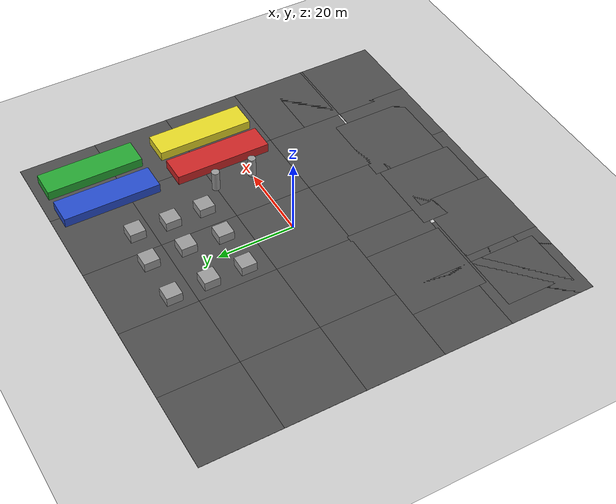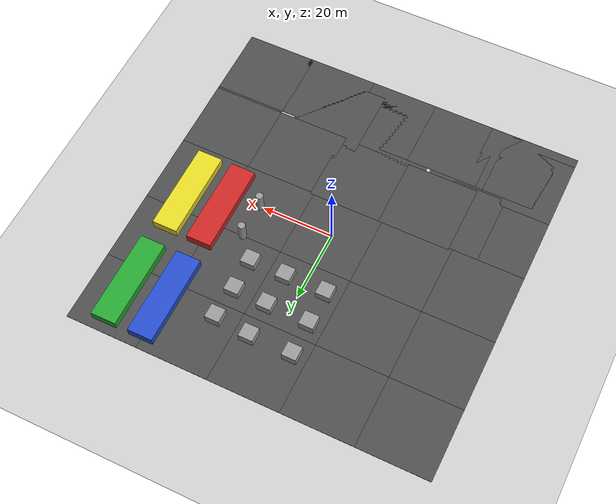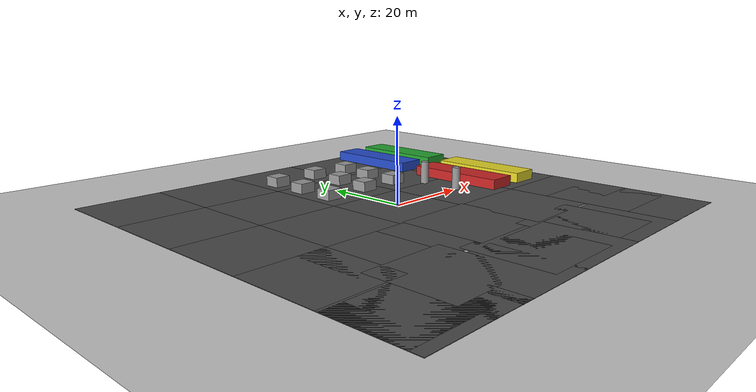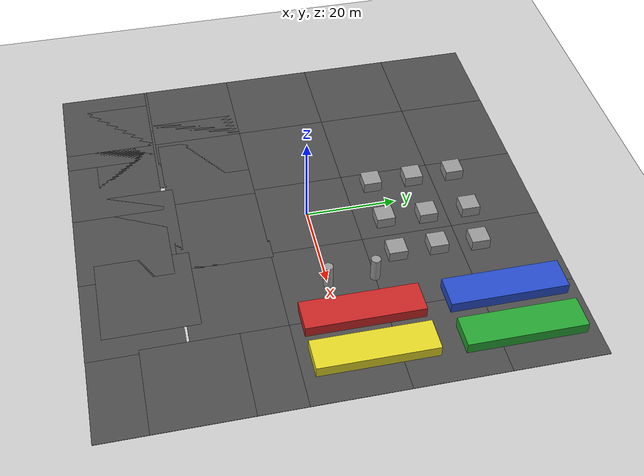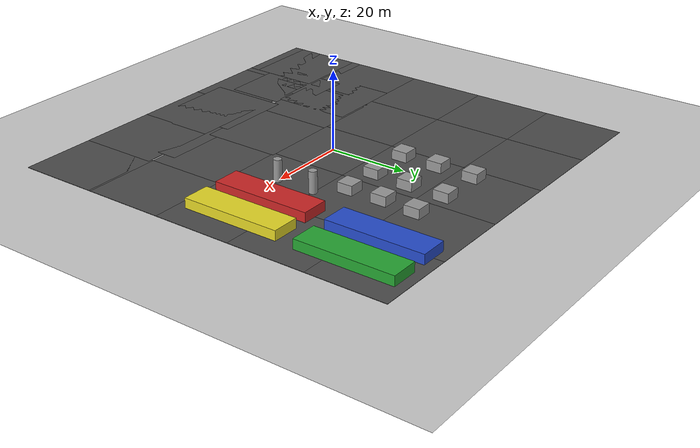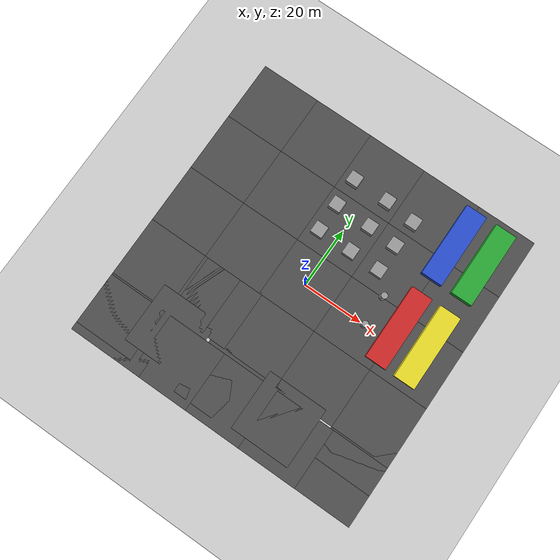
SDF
<gazebo version="1.2">
 <world name="default">
  <scene>
   <ambient>0.500000 0.500000 0.500000 1.000000</ambient>
   <background>0.500000 0.500000 0.500000 1.000000</background>
   <shadows>0</shadows>
  </scene>
  <physics type="ode">
   <gravity>0.000000 0.000000 -9.800000</gravity>
   <ode>
    <solver><type>quick</type><dt>0.001000</dt><iters>10</iters><sor>1.300000</sor></solver>
    <constraints>
     <cfm>0.000000</cfm>
     <erp>0.200000</erp>
     <contact_max_correcting_vel>100.000000</contact_max_correcting_vel>
     <contact_surface_layer>0.001000</contact_surface_layer>
    </constraints>
   </ode>
   <update_rate>1000.000000</update_rate>
  </physics>
  <model name="plane1_model">
   <link name="body">
    <collision name="geom_1">
     <geometry><plane><normal>0.000000 0.000000 1.000000</normal><size>1.000000 1.000000</size></plane></geometry>
     <surface>
      <friction>
       <ode>
        <mu>10.000000</mu>
        <mu2>10.000000</mu2>
        <fdir1>0.000000 0.000000 0.000000</fdir1>
        <slip1>0.000000</slip1>
        <slip2>0.000000</slip2>
       </ode>
      </friction>
      <bounce>
       <restitution_coefficient>0.000000</restitution_coefficient>
       <threshold>1000000.000000</threshold>
      </bounce>
      <contact>
       <ode>
        <soft_cfm>0.000000</soft_cfm>
        <soft_erp>0.200000</soft_erp>
        <kp>10000000000.000000</kp>
        <kd>1.000000</kd>
        <max_vel>100.000000</max_vel>
        <min_depth>0.000100</min_depth>
       </ode>
      </contact>
     </surface>
    </collision>
    <visual name="visual_1">
     <geometry>
      <plane><normal>0.000000 0.000000 1.000000</normal><size>100.000000 100.000000</size></plane>
     </geometry>
     <material><script><uri>__default__</uri><name>__default__</name></script></material>
     <cast_shadows>0</cast_shadows>
    </visual>
    <velocity_decay><linear>0.000000</linear><angular>0.000000</angular></velocity_decay>
   </link>
   <static>1</static>
  </model>
  <light name="my_light" type="directional">
   <pose>0.000000 0.000000 30.000000 0.000000 0.000000 0.000000</pose>
   <diffuse>0.900000 0.900000 0.900000 1.000000</diffuse>
   <specular>0.100000 0.100000 0.100000 1.000000</specular>
   <attenuation><range>20.000000</range></attenuation>
   <direction>0.000000 0.000000 -1.000000</direction>
   <cast_shadows>0</cast_shadows>
  </light>
  <plugin name="joint_trajectory_plugin" filename="libgazebo_ros_joint_trajectory.so"/>
  <model name="unit_box_4">
   <pose>40.000000 5.000000 0.500000 0.000000 0.000000 0.000000</pose>
   <link name="link">
    <inertial>
     <mass>1.000000</mass>
     <inertia>
      <ixx>1.000000</ixx>
      <ixy>0.000000</ixy>
      <ixz>0.000000</ixz>
      <iyy>1.000000</iyy>
      <iyz>0.000000</iyz>
      <izz>1.000000</izz>
     </inertia>
    </inertial>
    <collision name="collision">
     <geometry><box><size>7.000000 25.000000 4.000000</size></box></geometry>
    </collision>
    <visual name="visual">
     <geometry><box><size>7.000000 25.000000 4.000000</size></box></geometry>
     <material>
      <script><uri>file://media/materials/scripts/gazebo.material</uri><name>Gazebo/Yellow</name></script>
     </material>
    </visual>
    <velocity_decay><linear>0.000000</linear><angular>0.000000</angular></velocity_decay>
   </link>
   <static>1</static>
  </model>
  <model name="unit_box_5">
   <pose>40.514400 35.000000 0.500000 0.000000 0.000000 0.000000</pose>
   <link name="link">
    <inertial>
     <mass>1.000000</mass>
     <inertia>
      <ixx>1.000000</ixx>
      <ixy>0.000000</ixy>
      <ixz>0.000000</ixz>
      <iyy>1.000000</iyy>
      <iyz>0.000000</iyz>
      <izz>1.000000</izz>
     </inertia>
    </inertial>
    <collision name="collision">
     <geometry><box><size>7.000000 25.000000 4.000000</size></box></geometry>
    </collision>
    <visual name="visual">
     <geometry><box><size>7.000000 25.000000 4.000000</size></box></geometry>
     <material>
      <script><uri>file://media/materials/scripts/gazebo.material</uri><name>Gazebo/Green</name></script>
     </material>
    </visual>
    <velocity_decay><linear>0.000000</linear><angular>0.000000</angular></velocity_decay>
   </link>
   <static>1</static>
  </model>
  <model name="unit_box_6">
   <pose>30.000000 35.000000 0.500000 0.000000 0.000000 0.000000</pose>
   <link name="link">
    <inertial>
     <mass>1.000000</mass>
     <inertia>
      <ixx>1.000000</ixx>
      <ixy>0.000000</ixy>
      <ixz>0.000000</ixz>
      <iyy>1.000000</iyy>
      <iyz>0.000000</iyz>
      <izz>1.000000</izz>
     </inertia>
    </inertial>
    <collision name="collision">
     <geometry><box><size>7.000000 25.000000 4.000000</size></box></geometry>
    </collision>
    <visual name="visual">
     <geometry><box><size>7.000000 25.000000 4.000000</size></box></geometry>
     <material>
      <script><uri>file://media/materials/scripts/gazebo.material</uri><name>Gazebo/Blue</name></script>
     </material>
    </visual>
    <velocity_decay><linear>0.000000</linear><angular>0.000000</angular></velocity_decay>
   </link>
   <static>1</static>
  </model>
  <model name="unit_box_25">
   <pose>30.000000 5.000000 0.500000 0.000000 0.000000 0.000000</pose>
   <link name="link">
    <inertial>
     <mass>1.000000</mass>
     <inertia>
      <ixx>1.000000</ixx>
      <ixy>0.000000</ixy>
      <ixz>0.000000</ixz>
      <iyy>1.000000</iyy>
      <iyz>0.000000</iyz>
      <izz>1.000000</izz>
     </inertia>
    </inertial>
    <collision name="collision">
     <geometry><box><size>7.000000 25.000000 4.000000</size></box></geometry>
    </collision>
    <visual name="visual">
     <geometry><box><size>7.000000 25.000000 4.000000</size></box></geometry>
     <material>
      <script><uri>file://media/materials/scripts/gazebo.material</uri><name>Gazebo/Red</name></script>
     </material>
    </visual>
    <velocity_decay><linear>0.000000</linear><angular>0.000000</angular></velocity_decay>
   </link>
   <static>1</static>
  </model>
  <model name="asphalt_plane">
   <static>1</static>
   <link name="link">
    <collision name="collision">
     <geometry><box><size>20.000000 20.000000 0.100000</size></box></geometry>
    </collision>
    <visual name="visual">
     <cast_shadows>0</cast_shadows>
     <geometry><box><size>20.000000 20.000000 0.100000</size></box></geometry>
     <material>
      <script>
       <uri>model://asphalt_plane/materials/scripts</uri>
       <uri>model://asphalt_plane/materials/textures</uri>
       <name>vrc/asphalt</name>
      </script>
     </material>
    </visual>
    <velocity_decay><linear>0.000000</linear><angular>0.000000</angular></velocity_decay>
   </link>
   <pose>40.000000 -40.520300 0.000000 0.000000 0.000000 0.000000</pose>
  </model>
  <model name="asphalt_plane_0">
   <static>1</static>
   <link name="link">
    <collision name="collision">
     <geometry><box><size>20.000000 20.000000 0.100000</size></box></geometry>
    </collision>
    <visual name="visual">
     <cast_shadows>0</cast_shadows>
     <geometry><box><size>20.000000 20.000000 0.100000</size></box></geometry>
     <material>
      <script>
       <uri>model://asphalt_plane/materials/scripts</uri>
       <uri>model://asphalt_plane/materials/textures</uri>
       <name>vrc/asphalt</name>
      </script>
     </material>
    </visual>
    <velocity_decay><linear>0.000000</linear><angular>0.000000</angular></velocity_decay>
   </link>
   <pose>40.000000 -20.000000 0.000000 0.000000 0.000000 0.000000</pose>
  </model>
  <model name="asphalt_plane_1">
   <static>1</static>
   <link name="link">
    <collision name="collision">
     <geometry><box><size>20.000000 20.000000 0.100000</size></box></geometry>
    </collision>
    <visual name="visual">
     <cast_shadows>0</cast_shadows>
     <geometry><box><size>20.000000 20.000000 0.100000</size></box></geometry>
     <material>
      <script>
       <uri>model://asphalt_plane/materials/scripts</uri>
       <uri>model://asphalt_plane/materials/textures</uri>
       <name>vrc/asphalt</name>
      </script>
     </material>
    </visual>
    <velocity_decay><linear>0.000000</linear><angular>0.000000</angular></velocity_decay>
   </link>
   <pose>40.000000 -30.000000 0.000000 0.000000 0.000000 0.000000</pose>
  </model>
  <model name="asphalt_plane_2">
   <static>1</static>
   <link name="link">
    <collision name="collision">
     <geometry><box><size>20.000000 20.000000 0.100000</size></box></geometry>
    </collision>
    <visual name="visual">
     <cast_shadows>0</cast_shadows>
     <geometry><box><size>20.000000 20.000000 0.100000</size></box></geometry>
     <material>
      <script>
       <uri>model://asphalt_plane/materials/scripts</uri>
       <uri>model://asphalt_plane/materials/textures</uri>
       <name>vrc/asphalt</name>
      </script>
     </material>
    </visual>
    <velocity_decay><linear>0.000000</linear><angular>0.000000</angular></velocity_decay>
   </link>
   <pose>40.000000 0.000000 0.000000 0.000000 0.000000 0.000000</pose>
  </model>
  <model name="asphalt_plane_3">
   <static>1</static>
   <link name="link">
    <collision name="collision">
     <geometry><box><size>20.000000 20.000000 0.100000</size></box></geometry>
    </collision>
    <visual name="visual">
     <cast_shadows>0</cast_shadows>
     <geometry><box><size>20.000000 20.000000 0.100000</size></box></geometry>
     <material>
      <script>
       <uri>model://asphalt_plane/materials/scripts</uri>
       <uri>model://asphalt_plane/materials/textures</uri>
       <name>vrc/asphalt</name>
      </script>
     </material>
    </visual>
    <velocity_decay><linear>0.000000</linear><angular>0.000000</angular></velocity_decay>
   </link>
   <pose>40.000000 20.000000 0.000000 0.000000 0.000000 0.000000</pose>
  </model>
  <model name="asphalt_plane_4">
   <static>1</static>
   <link name="link">
    <collision name="collision">
     <geometry><box><size>20.000000 20.000000 0.100000</size></box></geometry>
    </collision>
    <visual name="visual">
     <cast_shadows>0</cast_shadows>
     <geometry><box><size>20.000000 20.000000 0.100000</size></box></geometry>
     <material>
      <script>
       <uri>model://asphalt_plane/materials/scripts</uri>
       <uri>model://asphalt_plane/materials/textures</uri>
       <name>vrc/asphalt</name>
      </script>
     </material>
    </visual>
    <velocity_decay><linear>0.000000</linear><angular>0.000000</angular></velocity_decay>
   </link>
   <pose>40.000000 40.000000 0.000000 0.000000 0.000000 0.000000</pose>
  </model>
  <model name="asphalt_plane_5">
   <static>1</static>
   <link name="link">
    <collision name="collision">
     <geometry><box><size>20.000000 20.000000 0.100000</size></box></geometry>
    </collision>
    <visual name="visual">
     <cast_shadows>0</cast_shadows>
     <geometry><box><size>20.000000 20.000000 0.100000</size></box></geometry>
     <material>
      <script>
       <uri>model://asphalt_plane/materials/scripts</uri>
       <uri>model://asphalt_plane/materials/textures</uri>
       <name>vrc/asphalt</name>
      </script>
     </material>
    </visual>
    <velocity_decay><linear>0.000000</linear><angular>0.000000</angular></velocity_decay>
   </link>
   <pose>20.000000 40.000000 0.000000 0.000000 0.000000 0.000000</pose>
  </model>
  <model name="asphalt_plane_6">
   <static>1</static>
   <link name="link">
    <collision name="collision">
     <geometry><box><size>20.000000 20.000000 0.100000</size></box></geometry>
    </collision>
    <visual name="visual">
     <cast_shadows>0</cast_shadows>
     <geometry><box><size>20.000000 20.000000 0.100000</size></box></geometry>
     <material>
      <script>
       <uri>model://asphalt_plane/materials/scripts</uri>
       <uri>model://asphalt_plane/materials/textures</uri>
       <name>vrc/asphalt</name>
      </script>
     </material>
    </visual>
    <velocity_decay><linear>0.000000</linear><angular>0.000000</angular></velocity_decay>
   </link>
   <pose>20.000000 20.000000 0.000000 0.000000 0.000000 0.000000</pose>
  </model>
  <model name="asphalt_plane_7">
   <static>1</static>
   <link name="link">
    <collision name="collision">
     <geometry><box><size>20.000000 20.000000 0.100000</size></box></geometry>
    </collision>
    <visual name="visual">
     <cast_shadows>0</cast_shadows>
     <geometry><box><size>20.000000 20.000000 0.100000</size></box></geometry>
     <material>
      <script>
       <uri>model://asphalt_plane/materials/scripts</uri>
       <uri>model://asphalt_plane/materials/textures</uri>
       <name>vrc/asphalt</name>
      </script>
     </material>
    </visual>
    <velocity_decay><linear>0.000000</linear><angular>0.000000</angular></velocity_decay>
   </link>
   <pose>0.000000 40.000000 0.000000 0.000000 0.000000 0.000000</pose>
  </model>
  <model name="asphalt_plane_8">
   <static>1</static>
   <link name="link">
    <collision name="collision">
     <geometry><box><size>20.000000 20.000000 0.100000</size></box></geometry>
    </collision>
    <visual name="visual">
     <cast_shadows>0</cast_shadows>
     <geometry><box><size>20.000000 20.000000 0.100000</size></box></geometry>
     <material>
      <script>
       <uri>model://asphalt_plane/materials/scripts</uri>
       <uri>model://asphalt_plane/materials/textures</uri>
       <name>vrc/asphalt</name>
      </script>
     </material>
    </visual>
    <velocity_decay><linear>0.000000</linear><angular>0.000000</angular></velocity_decay>
   </link>
   <pose>-20.000000 40.000000 0.000000 0.000000 0.000000 0.000000</pose>
  </model>
  <model name="asphalt_plane_9">
   <static>1</static>
   <link name="link">
    <collision name="collision">
     <geometry><box><size>20.000000 20.000000 0.100000</size></box></geometry>
    </collision>
    <visual name="visual">
     <cast_shadows>0</cast_shadows>
     <geometry><box><size>20.000000 20.000000 0.100000</size></box></geometry>
     <material>
      <script>
       <uri>model://asphalt_plane/materials/scripts</uri>
       <uri>model://asphalt_plane/materials/textures</uri>
       <name>vrc/asphalt</name>
      </script>
     </material>
    </visual>
    <velocity_decay><linear>0.000000</linear><angular>0.000000</angular></velocity_decay>
   </link>
   <pose>-40.000000 40.000000 0.000000 0.000000 0.000000 0.000000</pose>
  </model>
  <model name="asphalt_plane_10">
   <static>1</static>
   <link name="link">
    <collision name="collision">
     <geometry><box><size>20.000000 20.000000 0.100000</size></box></geometry>
    </collision>
    <visual name="visual">
     <cast_shadows>0</cast_shadows>
     <geometry><box><size>20.000000 20.000000 0.100000</size></box></geometry>
     <material>
      <script>
       <uri>model://asphalt_plane/materials/scripts</uri>
       <uri>model://asphalt_plane/materials/textures</uri>
       <name>vrc/asphalt</name>
      </script>
     </material>
    </visual>
    <velocity_decay><linear>0.000000</linear><angular>0.000000</angular></velocity_decay>
   </link>
   <pose>0.000000 20.000000 0.000000 0.000000 0.000000 0.000000</pose>
  </model>
  <model name="asphalt_plane_11">
   <static>1</static>
   <link name="link">
    <collision name="collision">
     <geometry><box><size>20.000000 20.000000 0.100000</size></box></geometry>
    </collision>
    <visual name="visual">
     <cast_shadows>0</cast_shadows>
     <geometry><box><size>20.000000 20.000000 0.100000</size></box></geometry>
     <material>
      <script>
       <uri>model://asphalt_plane/materials/scripts</uri>
       <uri>model://asphalt_plane/materials/textures</uri>
       <name>vrc/asphalt</name>
      </script>
     </material>
    </visual>
    <velocity_decay><linear>0.000000</linear><angular>0.000000</angular></velocity_decay>
   </link>
   <pose>-20.000000 20.000000 0.000000 0.000000 0.000000 0.000000</pose>
  </model>
  <model name="asphalt_plane_12">
   <static>1</static>
   <link name="link">
    <collision name="collision">
     <geometry><box><size>20.000000 20.000000 0.100000</size></box></geometry>
    </collision>
    <visual name="visual">
     <cast_shadows>0</cast_shadows>
     <geometry><box><size>20.000000 20.000000 0.100000</size></box></geometry>
     <material>
      <script>
       <uri>model://asphalt_plane/materials/scripts</uri>
       <uri>model://asphalt_plane/materials/textures</uri>
       <name>vrc/asphalt</name>
      </script>
     </material>
    </visual>
    <velocity_decay><linear>0.000000</linear><angular>0.000000</angular></velocity_decay>
   </link>
   <pose>-40.000000 20.000000 0.000000 0.000000 0.000000 0.000000</pose>
  </model>
  <model name="asphalt_plane_13">
   <static>1</static>
   <link name="link">
    <collision name="collision">
     <geometry><box><size>20.000000 20.000000 0.100000</size></box></geometry>
    </collision>
    <visual name="visual">
     <cast_shadows>0</cast_shadows>
     <geometry><box><size>20.000000 20.000000 0.100000</size></box></geometry>
     <material>
      <script>
       <uri>model://asphalt_plane/materials/scripts</uri>
       <uri>model://asphalt_plane/materials/textures</uri>
       <name>vrc/asphalt</name>
      </script>
     </material>
    </visual>
    <velocity_decay><linear>0.000000</linear><angular>0.000000</angular></velocity_decay>
   </link>
   <pose>20.000000 0.000000 0.000000 0.000000 0.000000 0.000000</pose>
  </model>
  <model name="asphalt_plane_14">
   <static>1</static>
   <link name="link">
    <collision name="collision">
     <geometry><box><size>20.000000 20.000000 0.100000</size></box></geometry>
    </collision>
    <visual name="visual">
     <cast_shadows>0</cast_shadows>
     <geometry><box><size>20.000000 20.000000 0.100000</size></box></geometry>
     <material>
      <script>
       <uri>model://asphalt_plane/materials/scripts</uri>
       <uri>model://asphalt_plane/materials/textures</uri>
       <name>vrc/asphalt</name>
      </script>
     </material>
    </visual>
    <velocity_decay><linear>0.000000</linear><angular>0.000000</angular></velocity_decay>
   </link>
   <pose>-40.000000 0.000000 0.000000 0.000000 0.000000 0.000000</pose>
  </model>
  <model name="asphalt_plane_15">
   <static>1</static>
   <link name="link">
    <collision name="collision">
     <geometry><box><size>20.000000 20.000000 0.100000</size></box></geometry>
    </collision>
    <visual name="visual">
     <cast_shadows>0</cast_shadows>
     <geometry><box><size>20.000000 20.000000 0.100000</size></box></geometry>
     <material>
      <script>
       <uri>model://asphalt_plane/materials/scripts</uri>
       <uri>model://asphalt_plane/materials/textures</uri>
       <name>vrc/asphalt</name>
      </script>
     </material>
    </visual>
    <velocity_decay><linear>0.000000</linear><angular>0.000000</angular></velocity_decay>
   </link>
   <pose>-40.000000 -20.000000 0.000000 0.000000 0.000000 0.000000</pose>
  </model>
  <model name="asphalt_plane_16">
   <static>1</static>
   <link name="link">
    <collision name="collision">
     <geometry><box><size>20.000000 20.000000 0.100000</size></box></geometry>
    </collision>
    <visual name="visual">
     <cast_shadows>0</cast_shadows>
     <geometry><box><size>20.000000 20.000000 0.100000</size></box></geometry>
     <material>
      <script>
       <uri>model://asphalt_plane/materials/scripts</uri>
       <uri>model://asphalt_plane/materials/textures</uri>
       <name>vrc/asphalt</name>
      </script>
     </material>
    </visual>
    <velocity_decay><linear>0.000000</linear><angular>0.000000</angular></velocity_decay>
   </link>
  </model>
  <model name="asphalt_plane_17">
   <static>1</static>
   <link name="link">
    <collision name="collision">
     <geometry><box><size>20.000000 20.000000 0.100000</size></box></geometry>
    </collision>
    <visual name="visual">
     <cast_shadows>0</cast_shadows>
     <geometry><box><size>20.000000 20.000000 0.100000</size></box></geometry>
     <material>
      <script>
       <uri>model://asphalt_plane/materials/scripts</uri>
       <uri>model://asphalt_plane/materials/textures</uri>
       <name>vrc/asphalt</name>
      </script>
     </material>
    </visual>
    <velocity_decay><linear>0.000000</linear><angular>0.000000</angular></velocity_decay>
   </link>
   <pose>-20.000000 0.000000 0.000000 0.000000 0.000000 0.000000</pose>
  </model>
  <model name="asphalt_plane_18">
   <static>1</static>
   <link name="link">
    <collision name="collision">
     <geometry><box><size>20.000000 20.000000 0.100000</size></box></geometry>
    </collision>
    <visual name="visual">
     <cast_shadows>0</cast_shadows>
     <geometry><box><size>20.000000 20.000000 0.100000</size></box></geometry>
     <material>
      <script>
       <uri>model://asphalt_plane/materials/scripts</uri>
       <uri>model://asphalt_plane/materials/textures</uri>
       <name>vrc/asphalt</name>
      </script>
     </material>
    </visual>
    <velocity_decay><linear>0.000000</linear><angular>0.000000</angular></velocity_decay>
   </link>
   <pose>20.000000 -20.000000 0.000000 0.000000 0.000000 0.000000</pose>
  </model>
  <model name="asphalt_plane_19">
   <static>1</static>
   <link name="link">
    <collision name="collision">
     <geometry><box><size>20.000000 20.000000 0.100000</size></box></geometry>
    </collision>
    <visual name="visual">
     <cast_shadows>0</cast_shadows>
     <geometry><box><size>20.000000 20.000000 0.100000</size></box></geometry>
     <material>
      <script>
       <uri>model://asphalt_plane/materials/scripts</uri>
       <uri>model://asphalt_plane/materials/textures</uri>
       <name>vrc/asphalt</name>
      </script>
     </material>
    </visual>
    <velocity_decay><linear>0.000000</linear><angular>0.000000</angular></velocity_decay>
   </link>
   <pose>1.000000 -19.557600 0.000000 0.000000 0.000000 0.000000</pose>
  </model>
  <model name="asphalt_plane_20">
   <static>1</static>
   <link name="link">
    <collision name="collision">
     <geometry><box><size>20.000000 20.000000 0.100000</size></box></geometry>
    </collision>
    <visual name="visual">
     <cast_shadows>0</cast_shadows>
     <geometry><box><size>20.000000 20.000000 0.100000</size></box></geometry>
     <material>
      <script>
       <uri>model://asphalt_plane/materials/scripts</uri>
       <uri>model://asphalt_plane/materials/textures</uri>
       <name>vrc/asphalt</name>
      </script>
     </material>
    </visual>
    <velocity_decay><linear>0.000000</linear><angular>0.000000</angular></velocity_decay>
   </link>
   <pose>-19.000000 -19.512800 0.000000 0.000000 0.000000 0.000000</pose>
  </model>
  <model name="asphalt_plane_21">
   <static>1</static>
   <link name="link">
    <collision name="collision">
     <geometry><box><size>20.000000 20.000000 0.100000</size></box></geometry>
    </collision>
    <visual name="visual">
     <cast_shadows>0</cast_shadows>
     <geometry><box><size>20.000000 20.000000 0.100000</size></box></geometry>
     <material>
      <script>
       <uri>model://asphalt_plane/materials/scripts</uri>
       <uri>model://asphalt_plane/materials/textures</uri>
       <name>vrc/asphalt</name>
      </script>
     </material>
    </visual>
    <velocity_decay><linear>0.000000</linear><angular>0.000000</angular></velocity_decay>
   </link>
   <pose>-40.000000 -38.000000 0.000000 0.000000 0.000000 0.000000</pose>
  </model>
  <model name="asphalt_plane_22">
   <static>1</static>
   <link name="link">
    <collision name="collision">
     <geometry><box><size>20.000000 20.000000 0.100000</size></box></geometry>
    </collision>
    <visual name="visual">
     <cast_shadows>0</cast_shadows>
     <geometry><box><size>20.000000 20.000000 0.100000</size></box></geometry>
     <material>
      <script>
       <uri>model://asphalt_plane/materials/scripts</uri>
       <uri>model://asphalt_plane/materials/textures</uri>
       <name>vrc/asphalt</name>
      </script>
     </material>
    </visual>
    <velocity_decay><linear>0.000000</linear><angular>0.000000</angular></velocity_decay>
   </link>
   <pose>16.000000 -37.000000 0.000000 0.000000 0.000000 0.000000</pose>
  </model>
  <model name="asphalt_plane_23">
   <static>1</static>
   <link name="link">
    <collision name="collision">
     <geometry><box><size>20.000000 20.000000 0.100000</size></box></geometry>
    </collision>
    <visual name="visual">
     <cast_shadows>0</cast_shadows>
     <geometry><box><size>20.000000 20.000000 0.100000</size></box></geometry>
     <material>
      <script>
       <uri>model://asphalt_plane/materials/scripts</uri>
       <uri>model://asphalt_plane/materials/textures</uri>
       <name>vrc/asphalt</name>
      </script>
     </material>
    </visual>
    <velocity_decay><linear>0.000000</linear><angular>0.000000</angular></velocity_decay>
   </link>
   <pose>-4.000000 -38.000000 0.000000 0.000000 0.000000 0.000000</pose>
  </model>
  <model name="asphalt_plane_24">
   <static>1</static>
   <link name="link">
    <collision name="collision">
     <geometry><box><size>20.000000 20.000000 0.100000</size></box></geometry>
    </collision>
    <visual name="visual">
     <cast_shadows>0</cast_shadows>
     <geometry><box><size>20.000000 20.000000 0.100000</size></box></geometry>
     <material>
      <script>
       <uri>model://asphalt_plane/materials/scripts</uri>
       <uri>model://asphalt_plane/materials/textures</uri>
       <name>vrc/asphalt</name>
      </script>
     </material>
    </visual>
    <velocity_decay><linear>0.000000</linear><angular>0.000000</angular></velocity_decay>
   </link>
   <pose>-27.000000 -20.000000 0.000000 0.000000 0.000000 0.000000</pose>
  </model>
  <model name="asphalt_plane_25">
   <static>1</static>
   <link name="link">
    <collision name="collision">
     <geometry><box><size>20.000000 20.000000 0.100000</size></box></geometry>
    </collision>
    <visual name="visual">
     <cast_shadows>0</cast_shadows>
     <geometry><box><size>20.000000 20.000000 0.100000</size></box></geometry>
     <material>
      <script>
       <uri>model://asphalt_plane/materials/scripts</uri>
       <uri>model://asphalt_plane/materials/textures</uri>
       <name>vrc/asphalt</name>
      </script>
     </material>
    </visual>
    <velocity_decay><linear>0.000000</linear><angular>0.000000</angular></velocity_decay>
   </link>
   <pose>-25.000000 -34.000000 0.000000 0.000000 0.000000 0.000000</pose>
  </model>
  <model name="asphalt_plane_26">
   <static>1</static>
   <link name="link">
    <collision name="collision">
     <geometry><box><size>20.000000 20.000000 0.100000</size></box></geometry>
    </collision>
    <visual name="visual">
     <cast_shadows>0</cast_shadows>
     <geometry><box><size>20.000000 20.000000 0.100000</size></box></geometry>
     <material>
      <script>
       <uri>model://asphalt_plane/materials/scripts</uri>
       <uri>model://asphalt_plane/materials/textures</uri>
       <name>vrc/asphalt</name>
      </script>
     </material>
    </visual>
    <velocity_decay><linear>0.000000</linear><angular>0.000000</angular></velocity_decay>
   </link>
   <pose>21.000000 -40.559200 0.000000 0.000000 0.000000 0.000000</pose>
  </model>
  <model name="asphalt_plane_27">
   <static>1</static>
   <link name="link">
    <collision name="collision">
     <geometry><box><size>20.000000 20.000000 0.100000</size></box></geometry>
    </collision>
    <visual name="visual">
     <cast_shadows>0</cast_shadows>
     <geometry><box><size>20.000000 20.000000 0.100000</size></box></geometry>
     <material>
      <script>
       <uri>model://asphalt_plane/materials/scripts</uri>
       <uri>model://asphalt_plane/materials/textures</uri>
       <name>vrc/asphalt</name>
      </script>
     </material>
    </visual>
    <velocity_decay><linear>0.000000</linear><angular>0.000000</angular></velocity_decay>
   </link>
   <pose>1.401160 -40.573400 0.000000 0.000000 0.000000 0.000000</pose>
  </model>
  <model name="asphalt_plane_28">
   <static>1</static>
   <link name="link">
    <collision name="collision">
     <geometry><box><size>20.000000 20.000000 0.100000</size></box></geometry>
    </collision>
    <visual name="visual">
     <cast_shadows>0</cast_shadows>
     <geometry><box><size>20.000000 20.000000 0.100000</size></box></geometry>
     <material>
      <script>
       <uri>model://asphalt_plane/materials/scripts</uri>
       <uri>model://asphalt_plane/materials/textures</uri>
       <name>vrc/asphalt</name>
      </script>
     </material>
    </visual>
    <velocity_decay><linear>0.000000</linear><angular>0.000000</angular></velocity_decay>
   </link>
   <pose>-18.000000 -40.589400 0.000000 0.000000 0.000000 0.000000</pose>
  </model>
  <model name="asphalt_plane_29">
   <static>1</static>
   <link name="link">
    <collision name="collision">
     <geometry><box><size>20.000000 20.000000 0.100000</size></box></geometry>
    </collision>
    <visual name="visual">
     <cast_shadows>0</cast_shadows>
     <geometry><box><size>20.000000 20.000000 0.100000</size></box></geometry>
     <material>
      <script>
       <uri>model://asphalt_plane/materials/scripts</uri>
       <uri>model://asphalt_plane/materials/textures</uri>
       <name>vrc/asphalt</name>
      </script>
     </material>
    </visual>
    <velocity_decay><linear>0.000000</linear><angular>0.000000</angular></velocity_decay>
   </link>
   <pose>-35.000000 -40.568100 0.000000 0.000000 0.000000 0.000000</pose>
  </model>
  <model name="asphalt_plane_30">
   <static>1</static>
   <link name="link">
    <collision name="collision">
     <geometry><box><size>20.000000 20.000000 0.100000</size></box></geometry>
    </collision>
    <visual name="visual">
     <cast_shadows>0</cast_shadows>
     <geometry><box><size>20.000000 20.000000 0.100000</size></box></geometry>
     <material>
      <script>
       <uri>model://asphalt_plane/materials/scripts</uri>
       <uri>model://asphalt_plane/materials/textures</uri>
       <name>vrc/asphalt</name>
      </script>
     </material>
    </visual>
    <velocity_decay><linear>0.000000</linear><angular>0.000000</angular></velocity_decay>
   </link>
   <pose>-40.000000 -40.558800 0.000000 0.000000 0.000000 0.000000</pose>
  </model>
  <model name="unit_cylinder_1">
   <pose>21.000000 0.000000 0.500000 0.000000 0.000000 0.000000</pose>
   <link name="link">
    <inertial>
     <mass>1.000000</mass>
     <inertia>
      <ixx>1.000000</ixx>
      <ixy>0.000000</ixy>
      <ixz>0.000000</ixz>
      <iyy>1.000000</iyy>
      <iyz>0.000000</iyz>
      <izz>1.000000</izz>
     </inertia>
    </inertial>
    <collision name="collision">
     <geometry><cylinder><radius>1.000000</radius><length>10.000000</length></cylinder></geometry>
    </collision>
    <visual name="visual">
     <geometry><cylinder><radius>1.000000</radius><length>10.000000</length></cylinder></geometry>
     <material>
      <script><uri>file://media/materials/scripts/gazebo.material</uri><name>Gazebo/Grey</name></script>
     </material>
    </visual>
    <velocity_decay><linear>0.000000</linear><angular>0.000000</angular></velocity_decay>
   </link>
   <static>1</static>
  </model>
  <model name="unit_cylinder_2">
   <pose>21.000000 10.000000 0.500000 0.000000 0.000000 0.000000</pose>
   <link name="link">
    <inertial>
     <mass>1.000000</mass>
     <inertia>
      <ixx>1.000000</ixx>
      <ixy>0.000000</ixy>
      <ixz>0.000000</ixz>
      <iyy>1.000000</iyy>
      <iyz>0.000000</iyz>
      <izz>1.000000</izz>
     </inertia>
    </inertial>
    <collision name="collision">
     <geometry><cylinder><radius>1.000000</radius><length>10.000000</length></cylinder></geometry>
    </collision>
    <visual name="visual">
     <geometry><cylinder><radius>1.000000</radius><length>10.000000</length></cylinder></geometry>
     <material>
      <script><uri>file://media/materials/scripts/gazebo.material</uri><name>Gazebo/Grey</name></script>
     </material>
    </visual>
    <velocity_decay><linear>0.000000</linear><angular>0.000000</angular></velocity_decay>
   </link>
   <static>1</static>
  </model>
  <model name="unit_box_1">
   <pose>-6.000000 16.000000 0.500000 0.000000 0.000000 0.000000</pose>
   <link name="link">
    <inertial>
     <mass>1.000000</mass>
     <inertia>
      <ixx>1.000000</ixx>
      <ixy>0.000000</ixy>
      <ixz>0.000000</ixz>
      <iyy>1.000000</iyy>
      <iyz>0.000000</iyz>
      <izz>1.000000</izz>
     </inertia>
    </inertial>
    <collision name="collision">
     <geometry><box><size>4.000000 4.000000 4.000000</size></box></geometry>
    </collision>
    <visual name="visual">
     <geometry><box><size>4.000000 4.000000 4.000000</size></box></geometry>
     <material>
      <script><uri>file://media/materials/scripts/gazebo.material</uri><name>Gazebo/Grey</name></script>
     </material>
    </visual>
    <velocity_decay><linear>0.000000</linear><angular>0.000000</angular></velocity_decay>
   </link>
   <static>1</static>
  </model>
  <model name="unit_box_2">
   <pose>-6.000000 25.497300 0.500000 0.000000 0.000000 0.000000</pose>
   <link name="link">
    <inertial>
     <mass>1.000000</mass>
     <inertia>
      <ixx>1.000000</ixx>
      <ixy>0.000000</ixy>
      <ixz>0.000000</ixz>
      <iyy>1.000000</iyy>
      <iyz>0.000000</iyz>
      <izz>1.000000</izz>
     </inertia>
    </inertial>
    <collision name="collision">
     <geometry><box><size>4.000000 4.000000 4.000000</size></box></geometry>
    </collision>
    <visual name="visual">
     <geometry><box><size>4.000000 4.000000 4.000000</size></box></geometry>
     <material>
      <script><uri>file://media/materials/scripts/gazebo.material</uri><name>Gazebo/Grey</name></script>
     </material>
    </visual>
    <velocity_decay><linear>0.000000</linear><angular>0.000000</angular></velocity_decay>
   </link>
   <static>1</static>
  </model>
  <model name="unit_box_3">
   <pose>-6.000000 35.000000 0.500000 0.000000 0.000000 0.000000</pose>
   <link name="link">
    <inertial>
     <mass>1.000000</mass>
     <inertia>
      <ixx>1.000000</ixx>
      <ixy>0.000000</ixy>
      <ixz>0.000000</ixz>
      <iyy>1.000000</iyy>
      <iyz>0.000000</iyz>
      <izz>1.000000</izz>
     </inertia>
    </inertial>
    <collision name="collision">
     <geometry><box><size>4.000000 4.000000 4.000000</size></box></geometry>
    </collision>
    <visual name="visual">
     <geometry><box><size>4.000000 4.000000 4.000000</size></box></geometry>
     <material>
      <script><uri>file://media/materials/scripts/gazebo.material</uri><name>Gazebo/Grey</name></script>
     </material>
    </visual>
    <velocity_decay><linear>0.000000</linear><angular>0.000000</angular></velocity_decay>
   </link>
   <static>1</static>
  </model>
  <model name="unit_box_4_0">
   <pose>5.447900 16.000000 0.500000 0.000000 0.000000 0.000000</pose>
   <link name="link">
    <inertial>
     <mass>1.000000</mass>
     <inertia>
      <ixx>1.000000</ixx>
      <ixy>0.000000</ixy>
      <ixz>0.000000</ixz>
      <iyy>1.000000</iyy>
      <iyz>0.000000</iyz>
      <izz>1.000000</izz>
     </inertia>
    </inertial>
    <collision name="collision">
     <geometry><box><size>4.000000 4.000000 4.000000</size></box></geometry>
    </collision>
    <visual name="visual">
     <geometry><box><size>4.000000 4.000000 4.000000</size></box></geometry>
     <material>
      <script><uri>file://media/materials/scripts/gazebo.material</uri><name>Gazebo/Grey</name></script>
     </material>
    </visual>
    <velocity_decay><linear>0.000000</linear><angular>0.000000</angular></velocity_decay>
   </link>
   <static>1</static>
  </model>
  <model name="unit_box_5_0">
   <pose>6.000000 25.438600 0.500000 0.000000 0.000000 0.000000</pose>
   <link name="link">
    <inertial>
     <mass>1.000000</mass>
     <inertia>
      <ixx>1.000000</ixx>
      <ixy>0.000000</ixy>
      <ixz>0.000000</ixz>
      <iyy>1.000000</iyy>
      <iyz>0.000000</iyz>
      <izz>1.000000</izz>
     </inertia>
    </inertial>
    <collision name="collision">
     <geometry><box><size>4.000000 4.000000 4.000000</size></box></geometry>
    </collision>
    <visual name="visual">
     <geometry><box><size>4.000000 4.000000 4.000000</size></box></geometry>
     <material>
      <script><uri>file://media/materials/scripts/gazebo.material</uri><name>Gazebo/Grey</name></script>
     </material>
    </visual>
    <velocity_decay><linear>0.000000</linear><angular>0.000000</angular></velocity_decay>
   </link>
   <static>1</static>
  </model>
  <model name="unit_box_6_0">
   <pose>6.000000 35.000000 0.500000 0.000000 0.000000 0.000000</pose>
   <link name="link">
    <inertial>
     <mass>1.000000</mass>
     <inertia>
      <ixx>1.000000</ixx>
      <ixy>0.000000</ixy>
      <ixz>0.000000</ixz>
      <iyy>1.000000</iyy>
      <iyz>0.000000</iyz>
      <izz>1.000000</izz>
     </inertia>
    </inertial>
    <collision name="collision">
     <geometry><box><size>4.000000 4.000000 4.000000</size></box></geometry>
    </collision>
    <visual name="visual">
     <geometry><box><size>4.000000 4.000000 4.000000</size></box></geometry>
     <material>
      <script><uri>file://media/materials/scripts/gazebo.material</uri><name>Gazebo/Grey</name></script>
     </material>
    </visual>
    <velocity_decay><linear>0.000000</linear><angular>0.000000</angular></velocity_decay>
   </link>
   <static>1</static>
  </model>
  <model name="unit_box_7">
   <pose>15.510070 16.000000 0.500000 0.000000 0.000000 0.000000</pose>
   <link name="link">
    <inertial>
     <mass>1.000000</mass>
     <inertia>
      <ixx>1.000000</ixx>
      <ixy>0.000000</ixy>
      <ixz>0.000000</ixz>
      <iyy>1.000000</iyy>
      <iyz>0.000000</iyz>
      <izz>1.000000</izz>
     </inertia>
    </inertial>
    <collision name="collision">
     <geometry><box><size>4.000000 4.000000 4.000000</size></box></geometry>
    </collision>
    <visual name="visual">
     <geometry><box><size>4.000000 4.000000 4.000000</size></box></geometry>
     <material>
      <script><uri>file://media/materials/scripts/gazebo.material</uri><name>Gazebo/Grey</name></script>
     </material>
    </visual>
    <velocity_decay><linear>0.000000</linear><angular>0.000000</angular></velocity_decay>
   </link>
   <static>1</static>
  </model>
  <model name="unit_box_8">
   <pose>15.453640 25.000000 0.500000 0.000000 0.000000 0.000000</pose>
   <link name="link">
    <inertial>
     <mass>1.000000</mass>
     <inertia>
      <ixx>1.000000</ixx>
      <ixy>0.000000</ixy>
      <ixz>0.000000</ixz>
      <iyy>1.000000</iyy>
      <iyz>0.000000</iyz>
      <izz>1.000000</izz>
     </inertia>
    </inertial>
    <collision name="collision">
     <geometry><box><size>4.000000 4.000000 4.000000</size></box></geometry>
    </collision>
    <visual name="visual">
     <geometry><box><size>4.000000 4.000000 4.000000</size></box></geometry>
     <material>
      <script><uri>file://media/materials/scripts/gazebo.material</uri><name>Gazebo/Grey</name></script>
     </material>
    </visual>
    <velocity_decay><linear>0.000000</linear><angular>0.000000</angular></velocity_decay>
   </link>
   <static>1</static>
  </model>
  <model name="unit_box_9">
   <pose>16.000000 34.000000 0.500000 0.000000 0.000000 0.000000</pose>
   <link name="link">
    <inertial>
     <mass>1.000000</mass>
     <inertia>
      <ixx>1.000000</ixx>
      <ixy>0.000000</ixy>
      <ixz>0.000000</ixz>
      <iyy>1.000000</iyy>
      <iyz>0.000000</iyz>
      <izz>1.000000</izz>
     </inertia>
    </inertial>
    <collision name="collision">
     <geometry><box><size>4.000000 4.000000 4.000000</size></box></geometry>
    </collision>
    <visual name="visual">
     <geometry><box><size>4.000000 4.000000 4.000000</size></box></geometry>
     <material>
      <script><uri>file://media/materials/scripts/gazebo.material</uri><name>Gazebo/Grey</name></script>
     </material>
    </visual>
    <velocity_decay><linear>0.000000</linear><angular>0.000000</angular></velocity_decay>
   </link>
   <static>1</static>
  </model>
 </world>
</gazebo>
